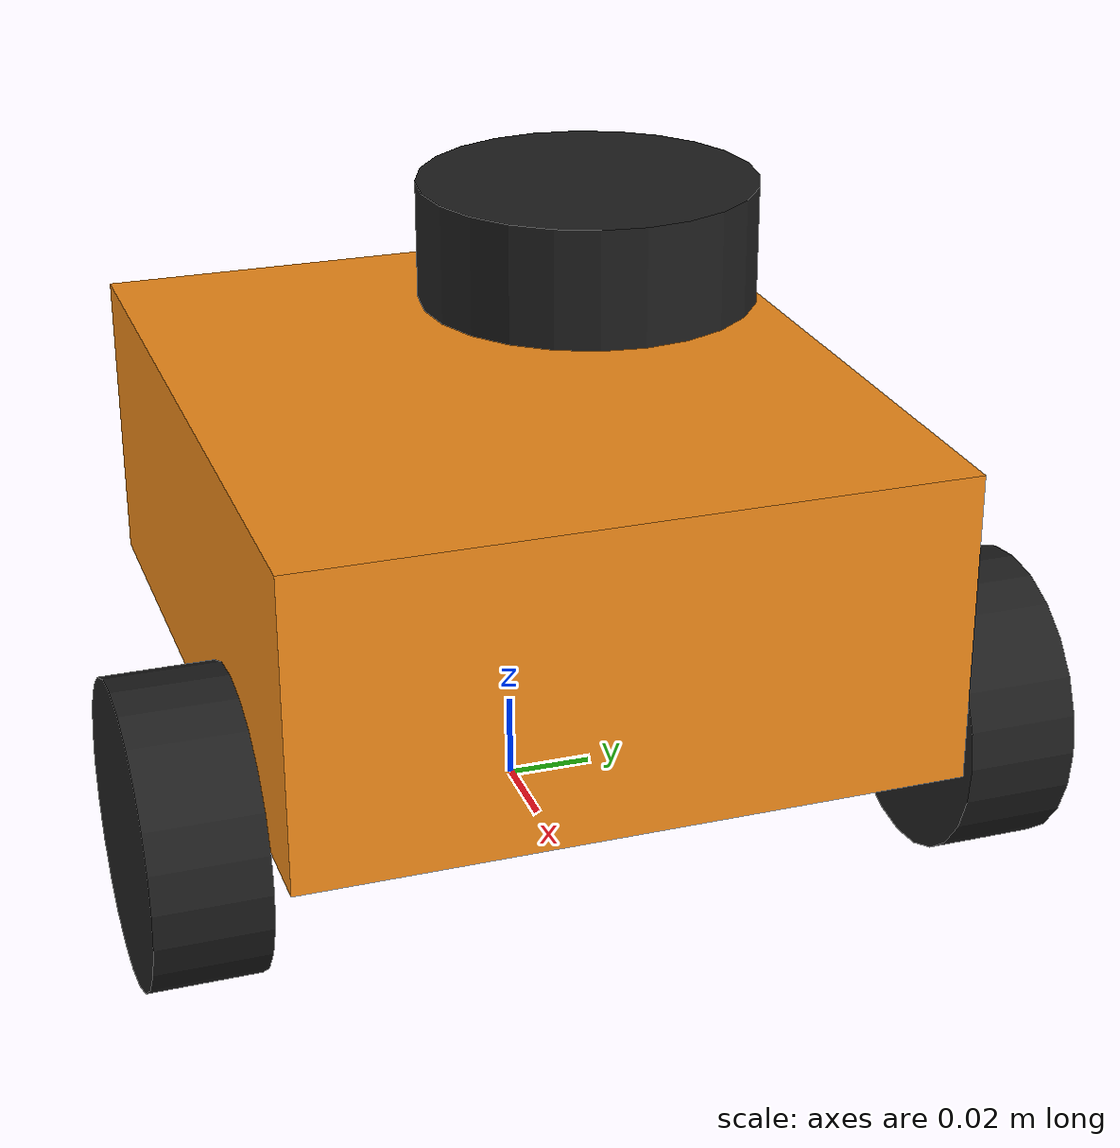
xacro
<?xml version="1.0"?>
<!-- Basic differential drive mobile base -->
<robot xmlns:xacro="http://www.ros.org/wiki/xacro" name="diffdrive_robot">
  <xacro:arg name="prefix" default="" />
  <xacro:arg name="use_mock_hardware" default="false" />
  <xacro:arg name="sim_mode" default="false" />

  <xacro:include filename="$(find ros2_control_demo_description)/diffbot/urdf/mydiffbot_description.urdf.xacro" />

  <!-- Import Rviz colors -->
  <xacro:include filename="$(find ros2_control_demo_description)/diffbot/urdf/diffbot.materials.xacro" />

  <!-- Import diffbot ros2_control description -->
  <xacro:include filename="$(find ros2_control_demo_example_2)/ros2_control/diffbot.ros2_control.xacro" />

  <xacro:diffbot prefix="$(arg prefix)" />

  <xacro:diffbot_ros2_control
    name="DiffBot" prefix="$(arg prefix)" use_mock_hardware="$(arg use_mock_hardware)"/>

</robot>

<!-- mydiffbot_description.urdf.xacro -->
<robot xmlns:xacro="http://www.ros.org/wiki/xacro">

  <!-- 平面180x150x(71.35{車體從輪子圓心到最上面}+33.5{論胎一半的距離 地面到圓心}) -->
  <!-- 萬象輪車頭到萬象輪中心148.9 -->

  <xacro:macro name="diffbot" params="prefix">

    <!-- Constants for robot dimensions -->
    <xacro:property name="PI" value="3.1415926535897931"/>
    <xacro:property name="base_mass" value="0.3" />
    <!-- arbitrary value for base mass -->
    <xacro:property name="base_width" value="0.15" />
    <xacro:property name="base_length" value="0.18" />
    <xacro:property name="base_height" value="0.07135" />
    <xacro:property name="wheel_mass" value="0.3" />
    <!-- arbitrary value for wheel mass -->
    <xacro:property name="wheel_len" value="0.025" />
    <xacro:property name="wheel_radius" value="0.0335" />
    <xacro:property name="caster_wheel_mass" value="0.1" />
    <!-- arbitrary value for caster wheel mass -->
    <xacro:property name="caster_wheel_radius" value="0.015" />
    <xacro:property name="z_offset" value="-${base_height/2}" />
    <!-- Space btw top of beam and the each joint -->

    <!-- Base Link -->
    <link name="${prefix}base_link">

    </link>

    <joint name="${prefix}chassis_joint" type="fixed">
      <parent link="${prefix}base_link"/>
      <child link="${prefix}chassis"/>
      <origin xyz="0 0 ${wheel_radius}" rpy="0 0 0"/>
    </joint>

    <link name="${prefix}chassis">
      <collision>
        <origin xyz="0 0 ${base_height/2}" rpy="0 0 0"/>
        <geometry>
          <box size="${base_length} ${base_width} ${base_height}"/>
        </geometry>
      </collision>

      <visual>
        <origin xyz="0 0 ${base_height/2}" rpy="0 0 0"/>
        <geometry>
          <box size="${base_length} ${base_width} ${base_height}"/>
        </geometry>
        <material name="orange"/>
      </visual>

      <inertial>
        <origin xyz="0 0 0" rpy="0 0 0"/>
        <mass value="${base_mass}"/>
        <inertia ixx="${base_mass / 12.0 * (base_length*base_length + base_height*base_height)}" ixy="0.0" ixz="0.0" iyy="${base_mass / 12.0 * (base_height*base_height + base_width*base_width)}" iyz="0.0" izz="${base_mass / 12.0 * (base_width*base_width + base_length*base_length)}"/>
      </inertial>
    </link>

    <joint name="${prefix}left_wheel_joint" type="continuous">
      <parent link="${prefix}base_link"/>
      <child link="${prefix}left_wheel"/>
      <origin xyz="0.055 ${(base_width/2)+(wheel_len/2)+0.003} ${wheel_radius}" rpy="0 0 0"/>
      <axis xyz="0 1 0"/>
      <dynamics damping="0.2"/>
      <limit effort="100" velocity="10.0"/>
    </joint>

    <!-- left wheel Link -->
    <link name="${prefix}left_wheel">
      <collision>
        <origin xyz="0 0 0" rpy="${PI/2} 0 0"/>
        <geometry>
          <cylinder length="${wheel_len}" radius="${wheel_radius}"/>
        </geometry>
      </collision>

      <visual>
        <origin xyz="0 0 0" rpy="${PI/2} 0 0"/>
        <geometry>
          <cylinder length="${wheel_len}" radius="${wheel_radius}"/>
        </geometry>
        <material name="black"/>
      </visual>

      <inertial>
        <origin xyz="0 0 0" rpy="${PI/2} 0 0"/>
        <mass value="${wheel_mass}"/>
        <inertia ixx="${wheel_mass / 12.0 * (3*wheel_radius*wheel_radius + wheel_len*wheel_len)}" ixy="0.0" ixz="0.0" iyy="${wheel_mass / 12.0 * (3*wheel_radius*wheel_radius + wheel_len*wheel_len)}" iyz="0.0" izz="${wheel_mass / 2.0 * wheel_radius*wheel_radius}"/>
      </inertial>
    </link>

    <joint name="${prefix}right_wheel_joint" type="continuous">
      <parent link="${prefix}base_link"/>
      <child link="${prefix}right_wheel"/>
      <origin xyz="0.055 ${(-base_width/2)-(wheel_len/2)-0.003} ${wheel_radius}" rpy="0 0 0"/>
      <axis xyz="0 1 0"/>
      <dynamics damping="0.2"/>
      <limit effort="100" velocity="10.0"/>
    </joint>

    <!-- right wheel Link -->
    <link name="${prefix}right_wheel">
      <collision>
        <origin xyz="0 0 0" rpy="${PI/2} 0 0"/>
        <geometry>
          <cylinder length="${wheel_len}" radius="${wheel_radius}"/>
        </geometry>
      </collision>

      <visual>
        <origin xyz="0 0 0" rpy="${PI/2} 0 0"/>
        <geometry>
          <cylinder length="${wheel_len}" radius="${wheel_radius}"/>
        </geometry>
        <material name="black"/>
      </visual>

      <inertial>
        <origin xyz="0 0 0" rpy="${PI/2} 0 0"/>
        <mass value="${wheel_mass}"/>
        <inertia ixx="${wheel_mass / 12.0 * (3*wheel_radius*wheel_radius + wheel_len*wheel_len)}" ixy="0.0" ixz="0.0" iyy="${wheel_mass / 12.0 * (3*wheel_radius*wheel_radius + wheel_len*wheel_len)}" iyz="0.0" izz="${wheel_mass / 2.0 * wheel_radius*wheel_radius}"/>
      </inertial>
    </link>

    <joint name="${prefix}caster_right_wheel_joint" type="fixed">
      <parent link="${prefix}base_link"/>
      <child link="${prefix}caster_right_wheel"/>
      <origin xyz="-0.05 0.05 ${caster_wheel_radius}" rpy="0 0 0"/>
    </joint>

    <!-- caster right wheel Link -->
    <link name="${prefix}caster_right_wheel">
      <collision>
        <origin xyz="0 0 0" rpy="0 0 0"/>
        <geometry>
          <sphere radius="${caster_wheel_radius}"/>
        </geometry>
      </collision>

      <visual>
        <origin xyz="0 0 0" rpy="0 0 0"/>
        <geometry>
          <sphere radius="${caster_wheel_radius}"/>
        </geometry>
        <material name="white"/>
      </visual>

      <inertial>
        <origin xyz="0 0 0" rpy="0 0 0"/>
        <mass value="${caster_wheel_mass}"/>
        <inertia ixx="${caster_wheel_mass * 0.4 * (caster_wheel_radius * caster_wheel_radius)}" ixy="0.0" ixz="0.0" iyy="${caster_wheel_mass * 0.4 * (caster_wheel_radius * caster_wheel_radius)}" iyz="0.0" izz="${caster_wheel_mass * 0.4 * (caster_wheel_radius * caster_wheel_radius)}"/>
      </inertial>
    </link>

    <joint name="${prefix}caster_left_wheel_joint" type="fixed">
      <parent link="${prefix}base_link"/>
      <child link="${prefix}caster_left_wheel"/>
      <origin xyz="-0.05 -0.05 ${caster_wheel_radius}" rpy="0 0 0"/>
    </joint>

    <!-- caster left wheel Link -->
    <link name="${prefix}caster_left_wheel">
      <collision>
        <origin xyz="0 0 0" rpy="0 0 0"/>
        <geometry>
          <sphere radius="${caster_wheel_radius}"/>
        </geometry>
      </collision>

      <visual>
        <origin xyz="0 0 0" rpy="0 0 0"/>
        <geometry>
          <sphere radius="${caster_wheel_radius}"/>
        </geometry>
        <material name="white"/>
      </visual>

      <inertial>
        <origin xyz="0 0 0" rpy="0 0 0"/>
        <mass value="${caster_wheel_mass}"/>
        <inertia ixx="${caster_wheel_mass * 0.4 * (caster_wheel_radius * caster_wheel_radius)}" ixy="0.0" ixz="0.0" iyy="${caster_wheel_mass * 0.4 * (caster_wheel_radius * caster_wheel_radius)}" iyz="0.0" izz="${caster_wheel_mass * 0.4 * (caster_wheel_radius * caster_wheel_radius)}"/>
      </inertial>
    </link>

  <!-- laser -->
  <joint name="${prefix}laser_joint" type="fixed">
    <parent link="${prefix}chassis"/>
    <child  link="${prefix}laser"/>
    <origin xyz="0.055 0 0.12" rpy="0 0 3.1415926"/> <!--z 0.1025+0.335(輪胎半徑)-->
  </joint>

  <link name="${prefix}laser">
    <visual>
      <origin xyz="0 0 0" rpy="0 0 0"/>
      <geometry>
        <cylinder length="0.024" radius="0.0345"/>
      </geometry>
      <material name="black"/>
    </visual>
    <collision>
      <origin xyz="0 0 0" rpy="0 0 0"/>
      <geometry>
        <cylinder length="0.024" radius="0.0345"/>
      </geometry>
    </collision>
    <inertial>
      <origin xyz="0 0 0" rpy="0 0 0"/>
      <mass value="0.2"/>
      <inertia ixx="0.0001" ixy="0.0" ixz="0.0" iyy="0.0001" iyz="0.0" izz="0.0001"/>
    </inertial>
  </link>

  <!-- gz lidar -->
  <gazebo reference="${prefix}laser">
    <sensor name="laser" type="gpu_lidar">
      <pose> 0 0 0 0 0 0 </pose>
      <visualize>false</visualize>
      <update_rate>10</update_rate>
      <topic>scan</topic>
      <gz_frame_id>laser</gz_frame_id>
      <lidar>
        <scan>
          <horizontal>
            <samples>360</samples>
            <min_angle>-${PI}</min_angle>
            <max_angle>${PI}</max_angle>
          </horizontal>
        </scan>
        <range>
          <min>0.5</min>
          <max>12.0</max>
        </range>
      </lidar>
    </sensor>
  </gazebo>

  </xacro:macro>

</robot>
